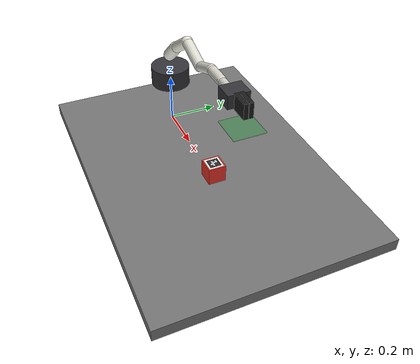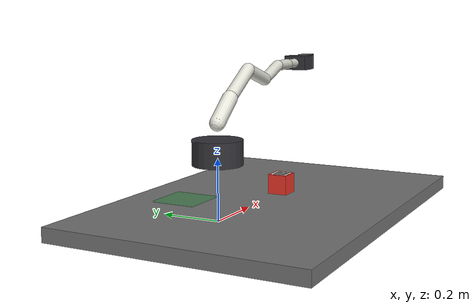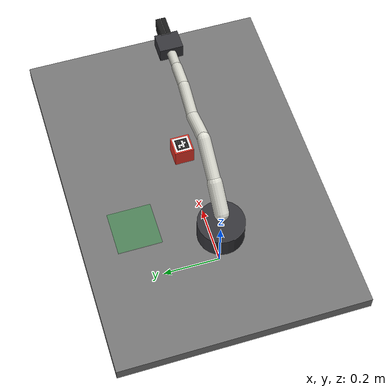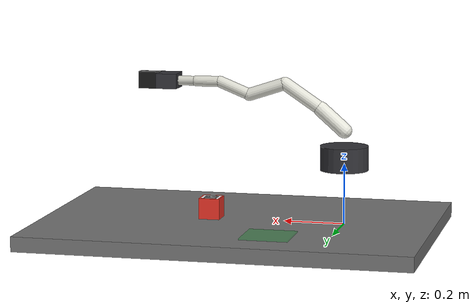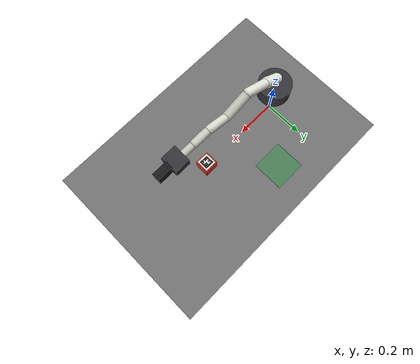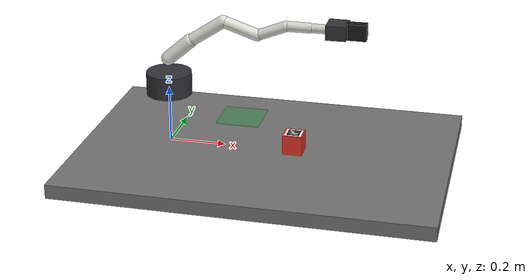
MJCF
<mujoco model="bigsmall_phase9_franka_like_scene">
  <!--DEVELOPMENTAL COLOR RIM MARKER V2: visual only; no grasp/native calibration acceptance-->
  <compiler angle="radian" coordinate="local" />
  <option timestep="0.0041666667" gravity="0 0 -9.81" integrator="RK4" />
  <default>
    <joint damping="0.8" armature="0.01" limited="true" />
    <geom contype="1" conaffinity="1" solref="0.01 1" solimp="0.9 0.95 0.001" friction="0.8 0.01 0.001" />
    <position kp="20" kv="5" ctrllimited="true" />
  </default>
  <worldbody>
    <camera name="rgbd" pos="0.35 0 1.4" quat="1 0 0 0" fovy="50" />
    <light name="rgbd_light" pos="0.35 0 2" dir="0 0 -1" directional="true" />
    <geom name="table" type="box" pos="0.35 0 -0.025" size="0.65 0.45 0.025" contype="1" conaffinity="1" rgba="0.45 0.45 0.45 1" />
    <body name="panda_link0" pos="0 0 0.22">
      <geom name="base" type="cylinder" size="0.08 0.04" contype="0" conaffinity="0" rgba="0.2 0.2 0.22 1" />
      <body name="panda_link1" pos="0 0 0.09">
        <joint name="joint1" type="hinge" axis="0 0 1" range="-2.9 2.9" />
        <geom name="link1" type="capsule" fromto="0 0 0 0.08 0 0.07" size="0.025" contype="0" conaffinity="0" rgba="0.9 0.9 0.86 1" />
        <body name="panda_link2" pos="0.08 0 0.07">
          <joint name="joint2" type="hinge" axis="0 1 0" range="-1.8 1.8" />
          <geom name="link2" type="capsule" fromto="0 0 0 0.12 0 0.08" size="0.022" contype="0" conaffinity="0" rgba="0.88 0.88 0.84 1" />
          <body name="panda_link3" pos="0.12 0 0.08">
            <joint name="joint3" type="hinge" axis="0 1 0" range="-2.8 2.8" />
            <geom name="link3" type="capsule" fromto="0 0 0 0.12 0 -0.04" size="0.021" contype="0" conaffinity="0" rgba="0.86 0.86 0.82 1" />
            <body name="panda_link4" pos="0.12 0 -0.04">
              <joint name="joint4" type="hinge" axis="1 0 0" range="-2.9 2.9" />
              <geom name="link4" type="capsule" fromto="0 0 0 0.1 0 0.04" size="0.019" contype="0" conaffinity="0" rgba="0.84 0.84 0.8 1" />
              <body name="panda_link5" pos="0.1 0 0.04">
                <joint name="joint5" type="hinge" axis="0 1 0" range="-2.9 2.9" />
                <geom name="link5" type="capsule" fromto="0 0 0 0.08 0 0" size="0.018" contype="0" conaffinity="0" rgba="0.82 0.82 0.78 1" />
                <body name="panda_link6" pos="0.08 0 0">
                  <joint name="joint6" type="hinge" axis="1 0 0" range="-2.9 2.9" />
                  <geom name="link6" type="capsule" fromto="0 0 0 0.06 0 0" size="0.016" contype="0" conaffinity="0" rgba="0.8 0.8 0.76 1" />
                  <body name="panda_hand" pos="0.06 0 0">
                    <joint name="joint7" type="hinge" axis="0 1 0" range="-2.9 2.9" />
                    <geom name="hand" type="box" pos="0.035 0 0" size="0.035 0.04 0.025" contype="0" conaffinity="0" rgba="0.2 0.2 0.22 1" />
                    <site name="tcp" pos="0.105 0 0" size="0.01" />
                    <body name="left_finger" pos="0.075 0.009 0">
                      <joint name="finger_left_joint" type="slide" axis="0 1 0" range="0 0.04" />
                      <geom name="left_finger_geom" type="box" pos="0.025 0 0" size="0.035 0.008 0.028" contype="2" conaffinity="2" friction="1.5 0.01 0.001" rgba="0.1 0.1 0.1 1" />
                    </body>
                    <body name="right_finger" pos="0.075 -0.009 0">
                      <joint name="finger_right_joint" type="slide" axis="0 -1 0" range="0 0.04" />
                      <geom name="right_finger_geom" type="box" pos="0.025 0 0" size="0.035 0.008 0.028" contype="2" conaffinity="2" friction="1.5 0.01 0.001" rgba="0.1 0.1 0.1 1" />
                    </body>
                  </body>
                </body>
              </body>
            </body>
          </body>
        </body>
      </body>
    </body>
    <body name="object" pos="0.45 0 0.035">
      <freejoint name="object_free" />
      <geom name="object_geom" type="box" size="0.035 0.035 0.035" mass="0.08" contype="1" conaffinity="3" rgba="0.9 0.2 0.15 1" />
      <geom name="pose_marker_color_v2_quiet" type="box" pos="0.0000000000 0.0000000000 0.0350200000" size="0.0300000000 0.0300000000 0.0000100000" mass="0" density="0" contype="0" conaffinity="0" group="2" rgba="0.98 0.98 0.98 1" />
      <geom name="pose_marker_color_v2_r0c0" type="box" pos="-0.0187500000 0.0187500000 0.0350400000" size="0.0037500000 0.0037500000 0.0000100000" mass="0" density="0" contype="0" conaffinity="0" group="2" rgba="0.01 0.01 0.01 1" />
      <geom name="pose_marker_color_v2_r0c1" type="box" pos="-0.0112500000 0.0187500000 0.0350400000" size="0.0037500000 0.0037500000 0.0000100000" mass="0" density="0" contype="0" conaffinity="0" group="2" rgba="0.01 0.01 0.01 1" />
      <geom name="pose_marker_color_v2_r0c2" type="box" pos="-0.0037500000 0.0187500000 0.0350400000" size="0.0037500000 0.0037500000 0.0000100000" mass="0" density="0" contype="0" conaffinity="0" group="2" rgba="0.01 0.01 0.01 1" />
      <geom name="pose_marker_color_v2_r0c3" type="box" pos="0.0037500000 0.0187500000 0.0350400000" size="0.0037500000 0.0037500000 0.0000100000" mass="0" density="0" contype="0" conaffinity="0" group="2" rgba="0.01 0.01 0.01 1" />
      <geom name="pose_marker_color_v2_r0c4" type="box" pos="0.0112500000 0.0187500000 0.0350400000" size="0.0037500000 0.0037500000 0.0000100000" mass="0" density="0" contype="0" conaffinity="0" group="2" rgba="0.01 0.01 0.01 1" />
      <geom name="pose_marker_color_v2_r0c5" type="box" pos="0.0187500000 0.0187500000 0.0350400000" size="0.0037500000 0.0037500000 0.0000100000" mass="0" density="0" contype="0" conaffinity="0" group="2" rgba="0.01 0.01 0.01 1" />
      <geom name="pose_marker_color_v2_r1c0" type="box" pos="-0.0187500000 0.0112500000 0.0350400000" size="0.0037500000 0.0037500000 0.0000100000" mass="0" density="0" contype="0" conaffinity="0" group="2" rgba="0.01 0.01 0.01 1" />
      <geom name="pose_marker_color_v2_r1c1" type="box" pos="-0.0112500000 0.0112500000 0.0350400000" size="0.0037500000 0.0037500000 0.0000100000" mass="0" density="0" contype="0" conaffinity="0" group="2" rgba="0.98 0.98 0.98 1" />
      <geom name="pose_marker_color_v2_r1c2" type="box" pos="-0.0037500000 0.0112500000 0.0350400000" size="0.0037500000 0.0037500000 0.0000100000" mass="0" density="0" contype="0" conaffinity="0" group="2" rgba="0.98 0.98 0.98 1" />
      <geom name="pose_marker_color_v2_r1c3" type="box" pos="0.0037500000 0.0112500000 0.0350400000" size="0.0037500000 0.0037500000 0.0000100000" mass="0" density="0" contype="0" conaffinity="0" group="2" rgba="0.01 0.01 0.01 1" />
      <geom name="pose_marker_color_v2_r1c4" type="box" pos="0.0112500000 0.0112500000 0.0350400000" size="0.0037500000 0.0037500000 0.0000100000" mass="0" density="0" contype="0" conaffinity="0" group="2" rgba="0.01 0.01 0.01 1" />
      <geom name="pose_marker_color_v2_r1c5" type="box" pos="0.0187500000 0.0112500000 0.0350400000" size="0.0037500000 0.0037500000 0.0000100000" mass="0" density="0" contype="0" conaffinity="0" group="2" rgba="0.01 0.01 0.01 1" />
      <geom name="pose_marker_color_v2_r2c0" type="box" pos="-0.0187500000 0.0037500000 0.0350400000" size="0.0037500000 0.0037500000 0.0000100000" mass="0" density="0" contype="0" conaffinity="0" group="2" rgba="0.01 0.01 0.01 1" />
      <geom name="pose_marker_color_v2_r2c1" type="box" pos="-0.0112500000 0.0037500000 0.0350400000" size="0.0037500000 0.0037500000 0.0000100000" mass="0" density="0" contype="0" conaffinity="0" group="2" rgba="0.01 0.01 0.01 1" />
      <geom name="pose_marker_color_v2_r2c2" type="box" pos="-0.0037500000 0.0037500000 0.0350400000" size="0.0037500000 0.0037500000 0.0000100000" mass="0" density="0" contype="0" conaffinity="0" group="2" rgba="0.98 0.98 0.98 1" />
      <geom name="pose_marker_color_v2_r2c3" type="box" pos="0.0037500000 0.0037500000 0.0350400000" size="0.0037500000 0.0037500000 0.0000100000" mass="0" density="0" contype="0" conaffinity="0" group="2" rgba="0.01 0.01 0.01 1" />
      <geom name="pose_marker_color_v2_r2c4" type="box" pos="0.0112500000 0.0037500000 0.0350400000" size="0.0037500000 0.0037500000 0.0000100000" mass="0" density="0" contype="0" conaffinity="0" group="2" rgba="0.01 0.01 0.01 1" />
      <geom name="pose_marker_color_v2_r2c5" type="box" pos="0.0187500000 0.0037500000 0.0350400000" size="0.0037500000 0.0037500000 0.0000100000" mass="0" density="0" contype="0" conaffinity="0" group="2" rgba="0.01 0.01 0.01 1" />
      <geom name="pose_marker_color_v2_r3c0" type="box" pos="-0.0187500000 -0.0037500000 0.0350400000" size="0.0037500000 0.0037500000 0.0000100000" mass="0" density="0" contype="0" conaffinity="0" group="2" rgba="0.01 0.01 0.01 1" />
      <geom name="pose_marker_color_v2_r3c1" type="box" pos="-0.0112500000 -0.0037500000 0.0350400000" size="0.0037500000 0.0037500000 0.0000100000" mass="0" density="0" contype="0" conaffinity="0" group="2" rgba="0.98 0.98 0.98 1" />
      <geom name="pose_marker_color_v2_r3c2" type="box" pos="-0.0037500000 -0.0037500000 0.0350400000" size="0.0037500000 0.0037500000 0.0000100000" mass="0" density="0" contype="0" conaffinity="0" group="2" rgba="0.98 0.98 0.98 1" />
      <geom name="pose_marker_color_v2_r3c3" type="box" pos="0.0037500000 -0.0037500000 0.0350400000" size="0.0037500000 0.0037500000 0.0000100000" mass="0" density="0" contype="0" conaffinity="0" group="2" rgba="0.98 0.98 0.98 1" />
      <geom name="pose_marker_color_v2_r3c4" type="box" pos="0.0112500000 -0.0037500000 0.0350400000" size="0.0037500000 0.0037500000 0.0000100000" mass="0" density="0" contype="0" conaffinity="0" group="2" rgba="0.98 0.98 0.98 1" />
      <geom name="pose_marker_color_v2_r3c5" type="box" pos="0.0187500000 -0.0037500000 0.0350400000" size="0.0037500000 0.0037500000 0.0000100000" mass="0" density="0" contype="0" conaffinity="0" group="2" rgba="0.01 0.01 0.01 1" />
      <geom name="pose_marker_color_v2_r4c0" type="box" pos="-0.0187500000 -0.0112500000 0.0350400000" size="0.0037500000 0.0037500000 0.0000100000" mass="0" density="0" contype="0" conaffinity="0" group="2" rgba="0.01 0.01 0.01 1" />
      <geom name="pose_marker_color_v2_r4c1" type="box" pos="-0.0112500000 -0.0112500000 0.0350400000" size="0.0037500000 0.0037500000 0.0000100000" mass="0" density="0" contype="0" conaffinity="0" group="2" rgba="0.01 0.01 0.01 1" />
      <geom name="pose_marker_color_v2_r4c2" type="box" pos="-0.0037500000 -0.0112500000 0.0350400000" size="0.0037500000 0.0037500000 0.0000100000" mass="0" density="0" contype="0" conaffinity="0" group="2" rgba="0.01 0.01 0.01 1" />
      <geom name="pose_marker_color_v2_r4c3" type="box" pos="0.0037500000 -0.0112500000 0.0350400000" size="0.0037500000 0.0037500000 0.0000100000" mass="0" density="0" contype="0" conaffinity="0" group="2" rgba="0.98 0.98 0.98 1" />
      <geom name="pose_marker_color_v2_r4c4" type="box" pos="0.0112500000 -0.0112500000 0.0350400000" size="0.0037500000 0.0037500000 0.0000100000" mass="0" density="0" contype="0" conaffinity="0" group="2" rgba="0.01 0.01 0.01 1" />
      <geom name="pose_marker_color_v2_r4c5" type="box" pos="0.0187500000 -0.0112500000 0.0350400000" size="0.0037500000 0.0037500000 0.0000100000" mass="0" density="0" contype="0" conaffinity="0" group="2" rgba="0.01 0.01 0.01 1" />
      <geom name="pose_marker_color_v2_r5c0" type="box" pos="-0.0187500000 -0.0187500000 0.0350400000" size="0.0037500000 0.0037500000 0.0000100000" mass="0" density="0" contype="0" conaffinity="0" group="2" rgba="0.01 0.01 0.01 1" />
      <geom name="pose_marker_color_v2_r5c1" type="box" pos="-0.0112500000 -0.0187500000 0.0350400000" size="0.0037500000 0.0037500000 0.0000100000" mass="0" density="0" contype="0" conaffinity="0" group="2" rgba="0.01 0.01 0.01 1" />
      <geom name="pose_marker_color_v2_r5c2" type="box" pos="-0.0037500000 -0.0187500000 0.0350400000" size="0.0037500000 0.0037500000 0.0000100000" mass="0" density="0" contype="0" conaffinity="0" group="2" rgba="0.01 0.01 0.01 1" />
      <geom name="pose_marker_color_v2_r5c3" type="box" pos="0.0037500000 -0.0187500000 0.0350400000" size="0.0037500000 0.0037500000 0.0000100000" mass="0" density="0" contype="0" conaffinity="0" group="2" rgba="0.01 0.01 0.01 1" />
      <geom name="pose_marker_color_v2_r5c4" type="box" pos="0.0112500000 -0.0187500000 0.0350400000" size="0.0037500000 0.0037500000 0.0000100000" mass="0" density="0" contype="0" conaffinity="0" group="2" rgba="0.01 0.01 0.01 1" />
      <geom name="pose_marker_color_v2_r5c5" type="box" pos="0.0187500000 -0.0187500000 0.0350400000" size="0.0037500000 0.0037500000 0.0000100000" mass="0" density="0" contype="0" conaffinity="0" group="2" rgba="0.01 0.01 0.01 1" />
    </body>
    <body name="target_region" pos="0.2 0.25 0.002">
      <geom name="target_region_geom" type="box" size="0.08 0.08 0.002" contype="0" conaffinity="0" rgba="0.1 0.6 0.2 0.4" />
    </body>
  </worldbody>
  <actuator>
    <position name="act1" joint="joint1" ctrlrange="-2.9 2.9" />
    <position name="act2" joint="joint2" ctrlrange="-1.8 1.8" />
    <position name="act3" joint="joint3" ctrlrange="-2.8 2.8" />
    <position name="act4" joint="joint4" ctrlrange="-2.9 2.9" />
    <position name="act5" joint="joint5" ctrlrange="-2.9 2.9" />
    <position name="act6" joint="joint6" ctrlrange="-2.9 2.9" />
    <position name="act7" joint="joint7" ctrlrange="-2.9 2.9" />
    <position name="left_finger_act" joint="finger_left_joint" ctrlrange="0 0.04" kp="250" kv="10" />
    <position name="right_finger_act" joint="finger_right_joint" ctrlrange="0 0.04" kp="250" kv="10" />
  </actuator>
</mujoco>
